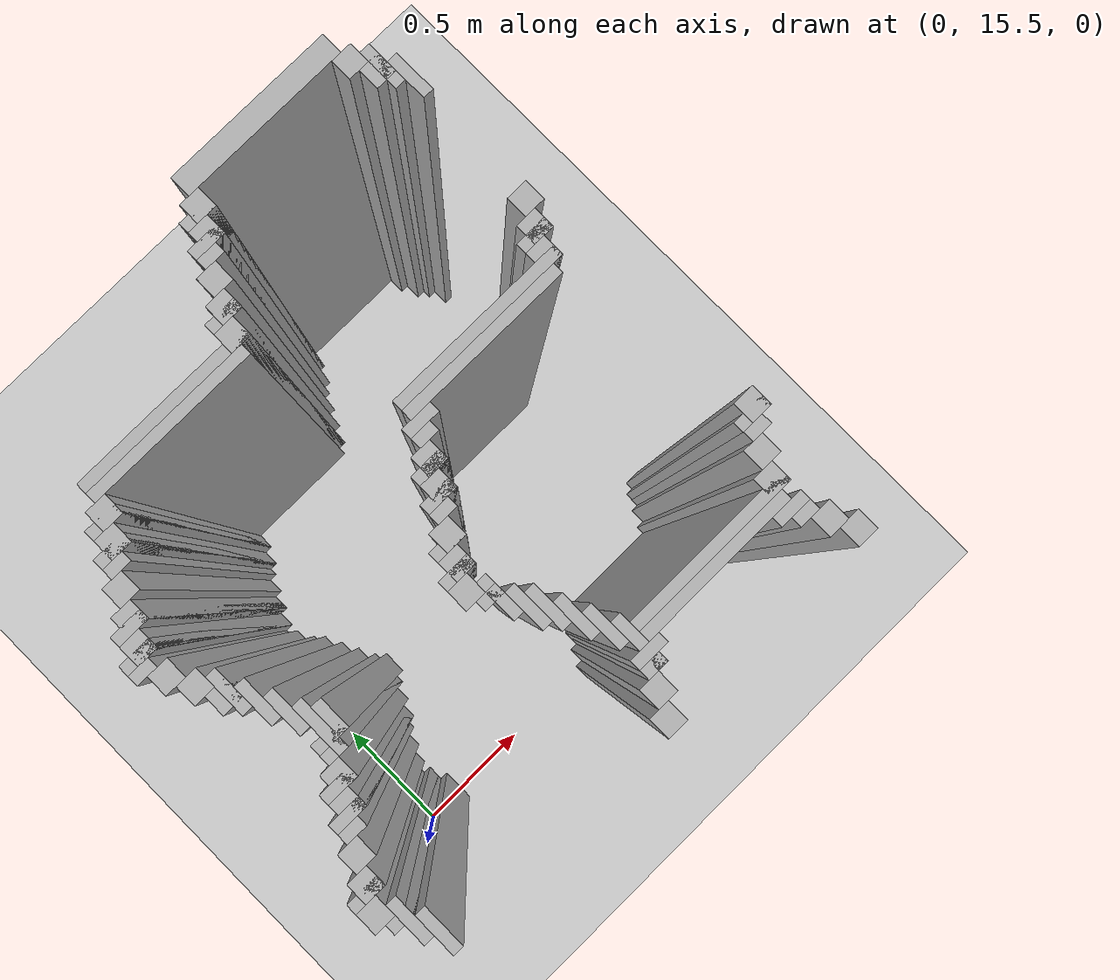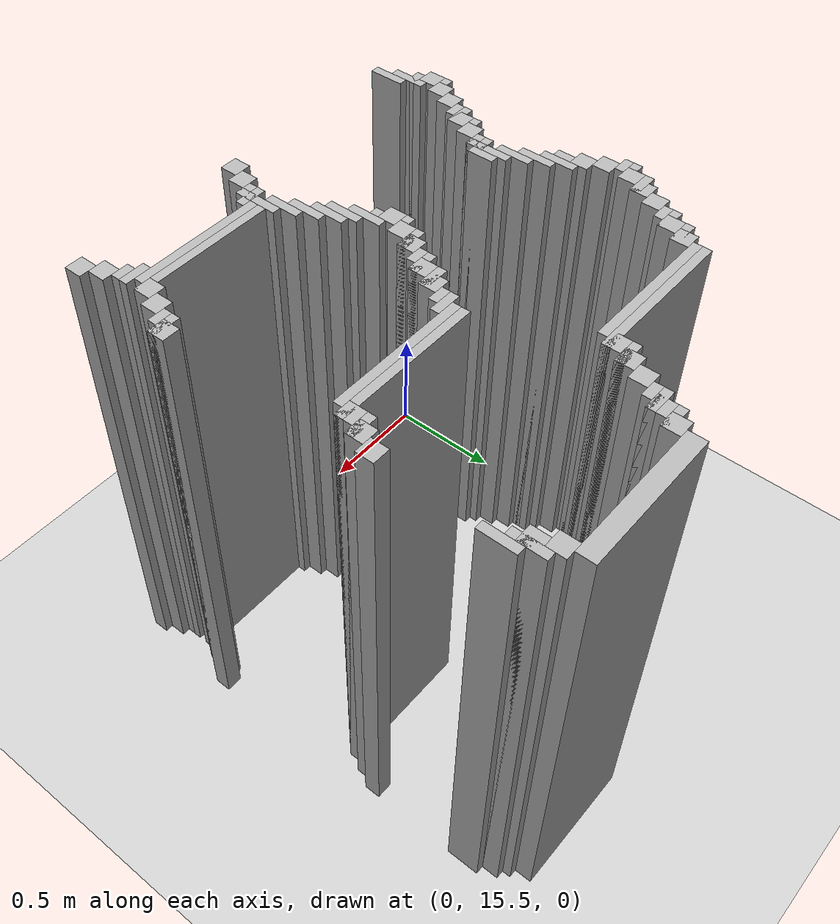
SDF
<sdf version="1.6">
 <world name="slam_world">
  <model name="ground_plane">
   <static>true</static>
   <link name="link">
    <collision name="collision">
     <geometry><plane><normal>0 0 1</normal><size>100 100</size></plane></geometry>
    </collision>
    <visual name="visual">
     <geometry><plane><normal>0 0 1</normal><size>100 100</size></plane></geometry>
     <material>
      <ambient>0.8 0.8 0.8 1</ambient>
      <diffuse>0.8 0.8 0.8 1</diffuse>
      <specular>0.8 0.8 0.8 1</specular>
     </material>
    </visual>
   </link>
  </model>
  <model name="wall_0">
   <static>true</static>
   <pose>1.2877030162412992 17.366589327146173 1.0 0 0 0</pose>
   <link name="link">
    <collision name="collision">
     <geometry><box><size>0.5568445475638051 0.06960556844547564 2.0</size></box></geometry>
    </collision>
    <visual name="visual">
     <geometry><box><size>0.5568445475638051 0.06960556844547564 2.0</size></box></geometry>
     <material><ambient>0.5 0.5 0.5 1</ambient><diffuse>0.7 0.7 0.7 1</diffuse></material>
    </visual>
   </link>
  </model>
  <model name="wall_11">
   <static>true</static>
   <pose>1.0092807424593968 17.296983758700694 1.0 0 0 0</pose>
   <link name="link">
    <collision name="collision">
     <geometry><box><size>0.06960556844547564 0.06960556844547564 2.0</size></box></geometry>
    </collision>
    <visual name="visual">
     <geometry><box><size>0.06960556844547564 0.06960556844547564 2.0</size></box></geometry>
     <material><ambient>0.5 0.5 0.5 1</ambient><diffuse>0.7 0.7 0.7 1</diffuse></material>
    </visual>
   </link>
  </model>
  <model name="wall_12">
   <static>true</static>
   <pose>1.5661252900232019 17.296983758700694 1.0 0 0 0</pose>
   <link name="link">
    <collision name="collision">
     <geometry><box><size>0.06960556844547564 0.06960556844547564 2.0</size></box></geometry>
    </collision>
    <visual name="visual">
     <geometry><box><size>0.06960556844547564 0.06960556844547564 2.0</size></box></geometry>
     <material><ambient>0.5 0.5 0.5 1</ambient><diffuse>0.7 0.7 0.7 1</diffuse></material>
    </visual>
   </link>
  </model>
  <model name="wall_31">
   <static>true</static>
   <pose>0.9918793503480278 17.279582366589327 1.0 0 0 0</pose>
   <link name="link">
    <collision name="collision">
     <geometry><box><size>0.10440835266821345 0.03480278422273782 2.0</size></box></geometry>
    </collision>
    <visual name="visual">
     <geometry><box><size>0.10440835266821345 0.03480278422273782 2.0</size></box></geometry>
     <material><ambient>0.5 0.5 0.5 1</ambient><diffuse>0.7 0.7 0.7 1</diffuse></material>
    </visual>
   </link>
  </model>
  <model name="wall_32">
   <static>true</static>
   <pose>1.6183294663573085 17.22737819025522 1.0 0 0 0</pose>
   <link name="link">
    <collision name="collision">
     <geometry><box><size>0.03480278422273782 0.13921113689095127 2.0</size></box></geometry>
    </collision>
    <visual name="visual">
     <geometry><box><size>0.03480278422273782 0.13921113689095127 2.0</size></box></geometry>
     <material><ambient>0.5 0.5 0.5 1</ambient><diffuse>0.7 0.7 0.7 1</diffuse></material>
    </visual>
   </link>
  </model>
  <model name="wall_51">
   <static>true</static>
   <pose>0.974477958236659 17.22737819025522 1.0 0 0 0</pose>
   <link name="link">
    <collision name="collision">
     <geometry><box><size>0.06960556844547564 0.06960556844547564 2.0</size></box></geometry>
    </collision>
    <visual name="visual">
     <geometry><box><size>0.06960556844547564 0.06960556844547564 2.0</size></box></geometry>
     <material><ambient>0.5 0.5 0.5 1</ambient><diffuse>0.7 0.7 0.7 1</diffuse></material>
    </visual>
   </link>
  </model>
  <model name="wall_52">
   <static>true</static>
   <pose>1.6009280742459395 17.22737819025522 1.0 0 0 0</pose>
   <link name="link">
    <collision name="collision">
     <geometry><box><size>0.06960556844547564 0.06960556844547564 2.0</size></box></geometry>
    </collision>
    <visual name="visual">
     <geometry><box><size>0.06960556844547564 0.06960556844547564 2.0</size></box></geometry>
     <material><ambient>0.5 0.5 0.5 1</ambient><diffuse>0.7 0.7 0.7 1</diffuse></material>
    </visual>
   </link>
  </model>
  <model name="wall_71">
   <static>true</static>
   <pose>0.95707656612529 17.209976798143853 1.0 0 0 0</pose>
   <link name="link">
    <collision name="collision">
     <geometry><box><size>0.10440835266821345 0.03480278422273782 2.0</size></box></geometry>
    </collision>
    <visual name="visual">
     <geometry><box><size>0.10440835266821345 0.03480278422273782 2.0</size></box></geometry>
     <material><ambient>0.5 0.5 0.5 1</ambient><diffuse>0.7 0.7 0.7 1</diffuse></material>
    </visual>
   </link>
  </model>
  <model name="wall_72">
   <static>true</static>
   <pose>1.6531322505800463 17.157772621809745 1.0 0 0 0</pose>
   <link name="link">
    <collision name="collision">
     <geometry><box><size>0.03480278422273782 0.13921113689095127 2.0</size></box></geometry>
    </collision>
    <visual name="visual">
     <geometry><box><size>0.03480278422273782 0.13921113689095127 2.0</size></box></geometry>
     <material><ambient>0.5 0.5 0.5 1</ambient><diffuse>0.7 0.7 0.7 1</diffuse></material>
    </visual>
   </link>
  </model>
  <model name="wall_91">
   <static>true</static>
   <pose>0.9396751740139211 17.17517401392111 1.0 0 0 0</pose>
   <link name="link">
    <collision name="collision">
     <geometry><box><size>0.06960556844547564 0.03480278422273782 2.0</size></box></geometry>
    </collision>
    <visual name="visual">
     <geometry><box><size>0.06960556844547564 0.03480278422273782 2.0</size></box></geometry>
     <material><ambient>0.5 0.5 0.5 1</ambient><diffuse>0.7 0.7 0.7 1</diffuse></material>
    </visual>
   </link>
  </model>
  <model name="wall_101">
   <static>true</static>
   <pose>0.9048723897911832 17.122969837587007 1.0 0 0 0</pose>
   <link name="link">
    <collision name="collision">
     <geometry><box><size>0.06960556844547564 0.06960556844547564 2.0</size></box></geometry>
    </collision>
    <visual name="visual">
     <geometry><box><size>0.06960556844547564 0.06960556844547564 2.0</size></box></geometry>
     <material><ambient>0.5 0.5 0.5 1</ambient><diffuse>0.7 0.7 0.7 1</diffuse></material>
    </visual>
   </link>
  </model>
  <model name="wall_121">
   <static>true</static>
   <pose>0.8700696055684455 17.053364269141532 1.0 0 0 0</pose>
   <link name="link">
    <collision name="collision">
     <geometry><box><size>0.06960556844547564 0.06960556844547564 2.0</size></box></geometry>
    </collision>
    <visual name="visual">
     <geometry><box><size>0.06960556844547564 0.06960556844547564 2.0</size></box></geometry>
     <material><ambient>0.5 0.5 0.5 1</ambient><diffuse>0.7 0.7 0.7 1</diffuse></material>
    </visual>
   </link>
  </model>
  <model name="wall_141">
   <static>true</static>
   <pose>0.8526682134570766 17.035962877030162 1.0 0 0 0</pose>
   <link name="link">
    <collision name="collision">
     <geometry><box><size>0.10440835266821345 0.03480278422273782 2.0</size></box></geometry>
    </collision>
    <visual name="visual">
     <geometry><box><size>0.10440835266821345 0.03480278422273782 2.0</size></box></geometry>
     <material><ambient>0.5 0.5 0.5 1</ambient><diffuse>0.7 0.7 0.7 1</diffuse></material>
    </visual>
   </link>
  </model>
  <model name="wall_161">
   <static>true</static>
   <pose>0.8352668213457076 16.983758700696054 1.0 0 0 0</pose>
   <link name="link">
    <collision name="collision">
     <geometry><box><size>0.06960556844547564 0.06960556844547564 2.0</size></box></geometry>
    </collision>
    <visual name="visual">
     <geometry><box><size>0.06960556844547564 0.06960556844547564 2.0</size></box></geometry>
     <material><ambient>0.5 0.5 0.5 1</ambient><diffuse>0.7 0.7 0.7 1</diffuse></material>
    </visual>
   </link>
  </model>
  <model name="wall_171">
   <static>true</static>
   <pose>0.574245939675174 16.966357308584687 1.0 0 0 0</pose>
   <link name="link">
    <collision name="collision">
     <geometry><box><size>0.5916473317865429 0.03480278422273782 2.0</size></box></geometry>
    </collision>
    <visual name="visual">
     <geometry><box><size>0.5916473317865429 0.03480278422273782 2.0</size></box></geometry>
     <material><ambient>0.5 0.5 0.5 1</ambient><diffuse>0.7 0.7 0.7 1</diffuse></material>
    </visual>
   </link>
  </model>
  <model name="wall_182">
   <static>true</static>
   <pose>0.5568445475638051 16.93155452436195 1.0 0 0 0</pose>
   <link name="link">
    <collision name="collision">
     <geometry><box><size>0.5568445475638051 0.03480278422273782 2.0</size></box></geometry>
    </collision>
    <visual name="visual">
     <geometry><box><size>0.5568445475638051 0.03480278422273782 2.0</size></box></geometry>
     <material><ambient>0.5 0.5 0.5 1</ambient><diffuse>0.7 0.7 0.7 1</diffuse></material>
    </visual>
   </link>
  </model>
  <model name="wall_192">
   <static>true</static>
   <pose>0.27842227378190254 16.87935034802784 1.0 0 0 0</pose>
   <link name="link">
    <collision name="collision">
     <geometry><box><size>0.06960556844547564 0.06960556844547564 2.0</size></box></geometry>
    </collision>
    <visual name="visual">
     <geometry><box><size>0.06960556844547564 0.06960556844547564 2.0</size></box></geometry>
     <material><ambient>0.5 0.5 0.5 1</ambient><diffuse>0.7 0.7 0.7 1</diffuse></material>
    </visual>
   </link>
  </model>
  <model name="wall_201">
   <static>true</static>
   <pose>0.2610208816705336 16.86194895591647 1.0 0 0 0</pose>
   <link name="link">
    <collision name="collision">
     <geometry><box><size>0.10440835266821345 0.03480278422273782 2.0</size></box></geometry>
    </collision>
    <visual name="visual">
     <geometry><box><size>0.10440835266821345 0.03480278422273782 2.0</size></box></geometry>
     <material><ambient>0.5 0.5 0.5 1</ambient><diffuse>0.7 0.7 0.7 1</diffuse></material>
    </visual>
   </link>
  </model>
  <model name="wall_210">
   <static>true</static>
   <pose>0.24361948955916474 16.809744779582367 1.0 0 0 0</pose>
   <link name="link">
    <collision name="collision">
     <geometry><box><size>0.06960556844547564 0.06960556844547564 2.0</size></box></geometry>
    </collision>
    <visual name="visual">
     <geometry><box><size>0.06960556844547564 0.06960556844547564 2.0</size></box></geometry>
     <material><ambient>0.5 0.5 0.5 1</ambient><diffuse>0.7 0.7 0.7 1</diffuse></material>
    </visual>
   </link>
  </model>
  <model name="wall_219">
   <static>true</static>
   <pose>0.2262180974477958 16.792343387470996 1.0 0 0 0</pose>
   <link name="link">
    <collision name="collision">
     <geometry><box><size>0.10440835266821345 0.03480278422273782 2.0</size></box></geometry>
    </collision>
    <visual name="visual">
     <geometry><box><size>0.10440835266821345 0.03480278422273782 2.0</size></box></geometry>
     <material><ambient>0.5 0.5 0.5 1</ambient><diffuse>0.7 0.7 0.7 1</diffuse></material>
    </visual>
   </link>
  </model>
  <model name="wall_228">
   <static>true</static>
   <pose>0.2088167053364269 16.75754060324826 1.0 0 0 0</pose>
   <link name="link">
    <collision name="collision">
     <geometry><box><size>0.06960556844547564 0.03480278422273782 2.0</size></box></geometry>
    </collision>
    <visual name="visual">
     <geometry><box><size>0.06960556844547564 0.03480278422273782 2.0</size></box></geometry>
     <material><ambient>0.5 0.5 0.5 1</ambient><diffuse>0.7 0.7 0.7 1</diffuse></material>
    </visual>
   </link>
  </model>
  <model name="wall_232">
   <static>true</static>
   <pose>0.17401392111368907 16.70533642691415 1.0 0 0 0</pose>
   <link name="link">
    <collision name="collision">
     <geometry><box><size>0.06960556844547564 0.06960556844547564 2.0</size></box></geometry>
    </collision>
    <visual name="visual">
     <geometry><box><size>0.06960556844547564 0.06960556844547564 2.0</size></box></geometry>
     <material><ambient>0.5 0.5 0.5 1</ambient><diffuse>0.7 0.7 0.7 1</diffuse></material>
    </visual>
   </link>
  </model>
  <model name="wall_233">
   <static>true</static>
   <pose>1.6357308584686774 16.70533642691415 1.0 0 0 0</pose>
   <link name="link">
    <collision name="collision">
     <geometry><box><size>0.06960556844547564 0.06960556844547564 2.0</size></box></geometry>
    </collision>
    <visual name="visual">
     <geometry><box><size>0.06960556844547564 0.06960556844547564 2.0</size></box></geometry>
     <material><ambient>0.5 0.5 0.5 1</ambient><diffuse>0.7 0.7 0.7 1</diffuse></material>
    </visual>
   </link>
  </model>
  <model name="wall_241">
   <static>true</static>
   <pose>0.13921113689095127 16.635730858468676 1.0 0 0 0</pose>
   <link name="link">
    <collision name="collision">
     <geometry><box><size>0.06960556844547564 0.06960556844547564 2.0</size></box></geometry>
    </collision>
    <visual name="visual">
     <geometry><box><size>0.06960556844547564 0.06960556844547564 2.0</size></box></geometry>
     <material><ambient>0.5 0.5 0.5 1</ambient><diffuse>0.7 0.7 0.7 1</diffuse></material>
    </visual>
   </link>
  </model>
  <model name="wall_242">
   <static>true</static>
   <pose>1.6009280742459395 16.635730858468676 1.0 0 0 0</pose>
   <link name="link">
    <collision name="collision">
     <geometry><box><size>0.06960556844547564 0.06960556844547564 2.0</size></box></geometry>
    </collision>
    <visual name="visual">
     <geometry><box><size>0.06960556844547564 0.06960556844547564 2.0</size></box></geometry>
     <material><ambient>0.5 0.5 0.5 1</ambient><diffuse>0.7 0.7 0.7 1</diffuse></material>
    </visual>
   </link>
  </model>
  <model name="wall_250">
   <static>true</static>
   <pose>0.12180974477958237 16.61832946635731 1.0 0 0 0</pose>
   <link name="link">
    <collision name="collision">
     <geometry><box><size>0.10440835266821345 0.03480278422273782 2.0</size></box></geometry>
    </collision>
    <visual name="visual">
     <geometry><box><size>0.10440835266821345 0.03480278422273782 2.0</size></box></geometry>
     <material><ambient>0.5 0.5 0.5 1</ambient><diffuse>0.7 0.7 0.7 1</diffuse></material>
    </visual>
   </link>
  </model>
  <model name="wall_251">
   <static>true</static>
   <pose>1.5835266821345706 16.61832946635731 1.0 0 0 0</pose>
   <link name="link">
    <collision name="collision">
     <geometry><box><size>0.10440835266821345 0.03480278422273782 2.0</size></box></geometry>
    </collision>
    <visual name="visual">
     <geometry><box><size>0.10440835266821345 0.03480278422273782 2.0</size></box></geometry>
     <material><ambient>0.5 0.5 0.5 1</ambient><diffuse>0.7 0.7 0.7 1</diffuse></material>
    </visual>
   </link>
  </model>
  <model name="wall_259">
   <static>true</static>
   <pose>0.10440835266821345 16.5661252900232 1.0 0 0 0</pose>
   <link name="link">
    <collision name="collision">
     <geometry><box><size>0.06960556844547564 0.06960556844547564 2.0</size></box></geometry>
    </collision>
    <visual name="visual">
     <geometry><box><size>0.06960556844547564 0.06960556844547564 2.0</size></box></geometry>
     <material><ambient>0.5 0.5 0.5 1</ambient><diffuse>0.7 0.7 0.7 1</diffuse></material>
    </visual>
   </link>
  </model>
  <model name="wall_260">
   <static>true</static>
   <pose>1.5661252900232019 16.5661252900232 1.0 0 0 0</pose>
   <link name="link">
    <collision name="collision">
     <geometry><box><size>0.06960556844547564 0.06960556844547564 2.0</size></box></geometry>
    </collision>
    <visual name="visual">
     <geometry><box><size>0.06960556844547564 0.06960556844547564 2.0</size></box></geometry>
     <material><ambient>0.5 0.5 0.5 1</ambient><diffuse>0.7 0.7 0.7 1</diffuse></material>
    </visual>
   </link>
  </model>
  <model name="wall_263">
   <static>true</static>
   <pose>0.08700696055684454 16.54872389791183 1.0 0 0 0</pose>
   <link name="link">
    <collision name="collision">
     <geometry><box><size>0.10440835266821345 0.03480278422273782 2.0</size></box></geometry>
    </collision>
    <visual name="visual">
     <geometry><box><size>0.10440835266821345 0.03480278422273782 2.0</size></box></geometry>
     <material><ambient>0.5 0.5 0.5 1</ambient><diffuse>0.7 0.7 0.7 1</diffuse></material>
    </visual>
   </link>
  </model>
  <model name="wall_264">
   <static>true</static>
   <pose>1.3051044083526682 16.54872389791183 1.0 0 0 0</pose>
   <link name="link">
    <collision name="collision">
     <geometry><box><size>0.5916473317865429 0.03480278422273782 2.0</size></box></geometry>
    </collision>
    <visual name="visual">
     <geometry><box><size>0.5916473317865429 0.03480278422273782 2.0</size></box></geometry>
     <material><ambient>0.5 0.5 0.5 1</ambient><diffuse>0.7 0.7 0.7 1</diffuse></material>
    </visual>
   </link>
  </model>
  <model name="wall_276">
   <static>true</static>
   <pose>0.06960556844547564 16.513921113689094 1.0 0 0 0</pose>
   <link name="link">
    <collision name="collision">
     <geometry><box><size>0.06960556844547564 0.03480278422273782 2.0</size></box></geometry>
    </collision>
    <visual name="visual">
     <geometry><box><size>0.06960556844547564 0.03480278422273782 2.0</size></box></geometry>
     <material><ambient>0.5 0.5 0.5 1</ambient><diffuse>0.7 0.7 0.7 1</diffuse></material>
    </visual>
   </link>
  </model>
  <model name="wall_277">
   <static>true</static>
   <pose>1.2877030162412992 16.513921113689094 1.0 0 0 0</pose>
   <link name="link">
    <collision name="collision">
     <geometry><box><size>0.5568445475638051 0.03480278422273782 2.0</size></box></geometry>
    </collision>
    <visual name="visual">
     <geometry><box><size>0.5568445475638051 0.03480278422273782 2.0</size></box></geometry>
     <material><ambient>0.5 0.5 0.5 1</ambient><diffuse>0.7 0.7 0.7 1</diffuse></material>
    </visual>
   </link>
  </model>
  <model name="wall_280">
   <static>true</static>
   <pose>0.10440835266821345 16.46171693735499 1.0 0 0 0</pose>
   <link name="link">
    <collision name="collision">
     <geometry><box><size>0.06960556844547564 0.06960556844547564 2.0</size></box></geometry>
    </collision>
    <visual name="visual">
     <geometry><box><size>0.06960556844547564 0.06960556844547564 2.0</size></box></geometry>
     <material><ambient>0.5 0.5 0.5 1</ambient><diffuse>0.7 0.7 0.7 1</diffuse></material>
    </visual>
   </link>
  </model>
  <model name="wall_281">
   <static>true</static>
   <pose>1.0266821345707655 16.479118329466356 1.0 0 0 0</pose>
   <link name="link">
    <collision name="collision">
     <geometry><box><size>0.10440835266821345 0.03480278422273782 2.0</size></box></geometry>
    </collision>
    <visual name="visual">
     <geometry><box><size>0.10440835266821345 0.03480278422273782 2.0</size></box></geometry>
     <material><ambient>0.5 0.5 0.5 1</ambient><diffuse>0.7 0.7 0.7 1</diffuse></material>
    </visual>
   </link>
  </model>
  <model name="wall_294">
   <static>true</static>
   <pose>1.0092807424593968 16.44431554524362 1.0 0 0 0</pose>
   <link name="link">
    <collision name="collision">
     <geometry><box><size>0.06960556844547564 0.03480278422273782 2.0</size></box></geometry>
    </collision>
    <visual name="visual">
     <geometry><box><size>0.06960556844547564 0.03480278422273782 2.0</size></box></geometry>
     <material><ambient>0.5 0.5 0.5 1</ambient><diffuse>0.7 0.7 0.7 1</diffuse></material>
    </visual>
   </link>
  </model>
  <model name="wall_303">
   <static>true</static>
   <pose>0.13921113689095127 16.39211136890951 1.0 0 0 0</pose>
   <link name="link">
    <collision name="collision">
     <geometry><box><size>0.06960556844547564 0.06960556844547564 2.0</size></box></geometry>
    </collision>
    <visual name="visual">
     <geometry><box><size>0.06960556844547564 0.06960556844547564 2.0</size></box></geometry>
     <material><ambient>0.5 0.5 0.5 1</ambient><diffuse>0.7 0.7 0.7 1</diffuse></material>
    </visual>
   </link>
  </model>
  <model name="wall_304">
   <static>true</static>
   <pose>0.974477958236659 16.39211136890951 1.0 0 0 0</pose>
   <link name="link">
    <collision name="collision">
     <geometry><box><size>0.06960556844547564 0.06960556844547564 2.0</size></box></geometry>
    </collision>
    <visual name="visual">
     <geometry><box><size>0.06960556844547564 0.06960556844547564 2.0</size></box></geometry>
     <material><ambient>0.5 0.5 0.5 1</ambient><diffuse>0.7 0.7 0.7 1</diffuse></material>
    </visual>
   </link>
  </model>
  <model name="wall_317">
   <static>true</static>
   <pose>0.191415313225058 16.322505800464036 1.0 0 0 0</pose>
   <link name="link">
    <collision name="collision">
     <geometry><box><size>0.03480278422273782 0.13921113689095127 2.0</size></box></geometry>
    </collision>
    <visual name="visual">
     <geometry><box><size>0.03480278422273782 0.13921113689095127 2.0</size></box></geometry>
     <material><ambient>0.5 0.5 0.5 1</ambient><diffuse>0.7 0.7 0.7 1</diffuse></material>
    </visual>
   </link>
  </model>
  <model name="wall_318">
   <static>true</static>
   <pose>0.95707656612529 16.374709976798144 1.0 0 0 0</pose>
   <link name="link">
    <collision name="collision">
     <geometry><box><size>0.10440835266821345 0.03480278422273782 2.0</size></box></geometry>
    </collision>
    <visual name="visual">
     <geometry><box><size>0.10440835266821345 0.03480278422273782 2.0</size></box></geometry>
     <material><ambient>0.5 0.5 0.5 1</ambient><diffuse>0.7 0.7 0.7 1</diffuse></material>
    </visual>
   </link>
  </model>
  <model name="wall_331">
   <static>true</static>
   <pose>0.17401392111368907 16.322505800464036 1.0 0 0 0</pose>
   <link name="link">
    <collision name="collision">
     <geometry><box><size>0.06960556844547564 0.06960556844547564 2.0</size></box></geometry>
    </collision>
    <visual name="visual">
     <geometry><box><size>0.06960556844547564 0.06960556844547564 2.0</size></box></geometry>
     <material><ambient>0.5 0.5 0.5 1</ambient><diffuse>0.7 0.7 0.7 1</diffuse></material>
    </visual>
   </link>
  </model>
  <model name="wall_332">
   <static>true</static>
   <pose>0.9396751740139211 16.322505800464036 1.0 0 0 0</pose>
   <link name="link">
    <collision name="collision">
     <geometry><box><size>0.06960556844547564 0.06960556844547564 2.0</size></box></geometry>
    </collision>
    <visual name="visual">
     <geometry><box><size>0.06960556844547564 0.06960556844547564 2.0</size></box></geometry>
     <material><ambient>0.5 0.5 0.5 1</ambient><diffuse>0.7 0.7 0.7 1</diffuse></material>
    </visual>
   </link>
  </model>
  <model name="wall_345">
   <static>true</static>
   <pose>0.2262180974477958 16.25290023201856 1.0 0 0 0</pose>
   <link name="link">
    <collision name="collision">
     <geometry><box><size>0.03480278422273782 0.13921113689095127 2.0</size></box></geometry>
    </collision>
    <visual name="visual">
     <geometry><box><size>0.03480278422273782 0.13921113689095127 2.0</size></box></geometry>
     <material><ambient>0.5 0.5 0.5 1</ambient><diffuse>0.7 0.7 0.7 1</diffuse></material>
    </visual>
   </link>
  </model>
  <model name="wall_346">
   <static>true</static>
   <pose>0.9222737819025522 16.30510440835267 1.0 0 0 0</pose>
   <link name="link">
    <collision name="collision">
     <geometry><box><size>0.10440835266821345 0.03480278422273782 2.0</size></box></geometry>
    </collision>
    <visual name="visual">
     <geometry><box><size>0.10440835266821345 0.03480278422273782 2.0</size></box></geometry>
     <material><ambient>0.5 0.5 0.5 1</ambient><diffuse>0.7 0.7 0.7 1</diffuse></material>
    </visual>
   </link>
  </model>
  <model name="wall_359">
   <static>true</static>
   <pose>0.9048723897911832 16.270301624129928 1.0 0 0 0</pose>
   <link name="link">
    <collision name="collision">
     <geometry><box><size>0.06960556844547564 0.03480278422273782 2.0</size></box></geometry>
    </collision>
    <visual name="visual">
     <geometry><box><size>0.06960556844547564 0.03480278422273782 2.0</size></box></geometry>
     <material><ambient>0.5 0.5 0.5 1</ambient><diffuse>0.7 0.7 0.7 1</diffuse></material>
    </visual>
   </link>
  </model>
  <model name="wall_367">
   <static>true</static>
   <pose>0.2610208816705336 16.183294663573086 1.0 0 0 0</pose>
   <link name="link">
    <collision name="collision">
     <geometry><box><size>0.03480278422273782 0.13921113689095127 2.0</size></box></geometry>
    </collision>
    <visual name="visual">
     <geometry><box><size>0.03480278422273782 0.13921113689095127 2.0</size></box></geometry>
     <material><ambient>0.5 0.5 0.5 1</ambient><diffuse>0.7 0.7 0.7 1</diffuse></material>
    </visual>
   </link>
  </model>
  <model name="wall_368">
   <static>true</static>
   <pose>0.8700696055684455 16.218097447795824 1.0 0 0 0</pose>
   <link name="link">
    <collision name="collision">
     <geometry><box><size>0.06960556844547564 0.06960556844547564 2.0</size></box></geometry>
    </collision>
    <visual name="visual">
     <geometry><box><size>0.06960556844547564 0.06960556844547564 2.0</size></box></geometry>
     <material><ambient>0.5 0.5 0.5 1</ambient><diffuse>0.7 0.7 0.7 1</diffuse></material>
    </visual>
   </link>
  </model>
  <model name="wall_381">
   <static>true</static>
   <pose>0.8526682134570766 16.200696055684453 1.0 0 0 0</pose>
   <link name="link">
    <collision name="collision">
     <geometry><box><size>0.10440835266821345 0.03480278422273782 2.0</size></box></geometry>
    </collision>
    <visual name="visual">
     <geometry><box><size>0.10440835266821345 0.03480278422273782 2.0</size></box></geometry>
     <material><ambient>0.5 0.5 0.5 1</ambient><diffuse>0.7 0.7 0.7 1</diffuse></material>
    </visual>
   </link>
  </model>
  <model name="wall_389">
   <static>true</static>
   <pose>0.29582366589327147 16.09628770301624 1.0 0 0 0</pose>
   <link name="link">
    <collision name="collision">
     <geometry><box><size>0.03480278422273782 0.17401392111368907 2.0</size></box></geometry>
    </collision>
    <visual name="visual">
     <geometry><box><size>0.03480278422273782 0.17401392111368907 2.0</size></box></geometry>
     <material><ambient>0.5 0.5 0.5 1</ambient><diffuse>0.7 0.7 0.7 1</diffuse></material>
    </visual>
   </link>
  </model>
  <model name="wall_390">
   <static>true</static>
   <pose>0.8352668213457076 16.14849187935035 1.0 0 0 0</pose>
   <link name="link">
    <collision name="collision">
     <geometry><box><size>0.06960556844547564 0.06960556844547564 2.0</size></box></geometry>
    </collision>
    <visual name="visual">
     <geometry><box><size>0.06960556844547564 0.06960556844547564 2.0</size></box></geometry>
     <material><ambient>0.5 0.5 0.5 1</ambient><diffuse>0.7 0.7 0.7 1</diffuse></material>
    </visual>
   </link>
  </model>
  <model name="wall_403">
   <static>true</static>
   <pose>0.3306264501160093 16.09628770301624 1.0 0 0 0</pose>
   <link name="link">
    <collision name="collision">
     <geometry><box><size>0.03480278422273782 0.10440835266821345 2.0</size></box></geometry>
    </collision>
    <visual name="visual">
     <geometry><box><size>0.03480278422273782 0.10440835266821345 2.0</size></box></geometry>
     <material><ambient>0.5 0.5 0.5 1</ambient><diffuse>0.7 0.7 0.7 1</diffuse></material>
    </visual>
   </link>
  </model>
  <model name="wall_404">
   <static>true</static>
   <pose>0.8178654292343387 16.13109048723898 1.0 0 0 0</pose>
   <link name="link">
    <collision name="collision">
     <geometry><box><size>0.10440835266821345 0.03480278422273782 2.0</size></box></geometry>
    </collision>
    <visual name="visual">
     <geometry><box><size>0.10440835266821345 0.03480278422273782 2.0</size></box></geometry>
     <material><ambient>0.5 0.5 0.5 1</ambient><diffuse>0.7 0.7 0.7 1</diffuse></material>
    </visual>
   </link>
  </model>
  <model name="wall_416">
   <static>true</static>
   <pose>0.8004640371229698 16.07888631090487 1.0 0 0 0</pose>
   <link name="link">
    <collision name="collision">
     <geometry><box><size>0.06960556844547564 0.06960556844547564 2.0</size></box></geometry>
    </collision>
    <visual name="visual">
     <geometry><box><size>0.06960556844547564 0.06960556844547564 2.0</size></box></geometry>
     <material><ambient>0.5 0.5 0.5 1</ambient><diffuse>0.7 0.7 0.7 1</diffuse></material>
    </visual>
   </link>
  </model>
  <model name="wall_428">
   <static>true</static>
   <pose>0.29582366589327147 16.061484918793504 1.0 0 0 0</pose>
   <link name="link">
    <collision name="collision">
     <geometry><box><size>0.10440835266821345 0.03480278422273782 2.0</size></box></geometry>
    </collision>
    <visual name="visual">
     <geometry><box><size>0.10440835266821345 0.03480278422273782 2.0</size></box></geometry>
     <material><ambient>0.5 0.5 0.5 1</ambient><diffuse>0.7 0.7 0.7 1</diffuse></material>
    </visual>
   </link>
  </model>
  <model name="wall_429">
   <static>true</static>
   <pose>0.8526682134570766 16.009280742459396 1.0 0 0 0</pose>
   <link name="link">
    <collision name="collision">
     <geometry><box><size>0.03480278422273782 0.13921113689095127 2.0</size></box></geometry>
    </collision>
    <visual name="visual">
     <geometry><box><size>0.03480278422273782 0.13921113689095127 2.0</size></box></geometry>
     <material><ambient>0.5 0.5 0.5 1</ambient><diffuse>0.7 0.7 0.7 1</diffuse></material>
    </visual>
   </link>
  </model>
  <model name="wall_442">
   <static>true</static>
   <pose>0.27842227378190254 16.026682134570766 1.0 0 0 0</pose>
   <link name="link">
    <collision name="collision">
     <geometry><box><size>0.06960556844547564 0.03480278422273782 2.0</size></box></geometry>
    </collision>
    <visual name="visual">
     <geometry><box><size>0.06960556844547564 0.03480278422273782 2.0</size></box></geometry>
     <material><ambient>0.5 0.5 0.5 1</ambient><diffuse>0.7 0.7 0.7 1</diffuse></material>
    </visual>
   </link>
  </model>
  <model name="wall_443">
   <static>true</static>
   <pose>0.8352668213457076 16.026682134570766 1.0 0 0 0</pose>
   <link name="link">
    <collision name="collision">
     <geometry><box><size>0.06960556844547564 0.03480278422273782 2.0</size></box></geometry>
    </collision>
    <visual name="visual">
     <geometry><box><size>0.06960556844547564 0.03480278422273782 2.0</size></box></geometry>
     <material><ambient>0.5 0.5 0.5 1</ambient><diffuse>0.7 0.7 0.7 1</diffuse></material>
    </visual>
   </link>
  </model>
  <model name="wall_456">
   <static>true</static>
   <pose>0.24361948955916474 15.974477958236658 1.0 0 0 0</pose>
   <link name="link">
    <collision name="collision">
     <geometry><box><size>0.06960556844547564 0.06960556844547564 2.0</size></box></geometry>
    </collision>
    <visual name="visual">
     <geometry><box><size>0.06960556844547564 0.06960556844547564 2.0</size></box></geometry>
     <material><ambient>0.5 0.5 0.5 1</ambient><diffuse>0.7 0.7 0.7 1</diffuse></material>
    </visual>
   </link>
  </model>
  <model name="wall_457">
   <static>true</static>
   <pose>0.8874709976798143 15.93967517401392 1.0 0 0 0</pose>
   <link name="link">
    <collision name="collision">
     <geometry><box><size>0.03480278422273782 0.13921113689095127 2.0</size></box></geometry>
    </collision>
    <visual name="visual">
     <geometry><box><size>0.03480278422273782 0.13921113689095127 2.0</size></box></geometry>
     <material><ambient>0.5 0.5 0.5 1</ambient><diffuse>0.7 0.7 0.7 1</diffuse></material>
    </visual>
   </link>
  </model>
  <model name="wall_470">
   <static>true</static>
   <pose>0.2262180974477958 15.95707656612529 1.0 0 0 0</pose>
   <link name="link">
    <collision name="collision">
     <geometry><box><size>0.10440835266821345 0.03480278422273782 2.0</size></box></geometry>
    </collision>
    <visual name="visual">
     <geometry><box><size>0.10440835266821345 0.03480278422273782 2.0</size></box></geometry>
     <material><ambient>0.5 0.5 0.5 1</ambient><diffuse>0.7 0.7 0.7 1</diffuse></material>
    </visual>
   </link>
  </model>
  <model name="wall_471">
   <static>true</static>
   <pose>0.9222737819025522 15.904872389791183 1.0 0 0 0</pose>
   <link name="link">
    <collision name="collision">
     <geometry><box><size>0.03480278422273782 0.13921113689095127 2.0</size></box></geometry>
    </collision>
    <visual name="visual">
     <geometry><box><size>0.03480278422273782 0.13921113689095127 2.0</size></box></geometry>
     <material><ambient>0.5 0.5 0.5 1</ambient><diffuse>0.7 0.7 0.7 1</diffuse></material>
    </visual>
   </link>
  </model>
  <model name="wall_484">
   <static>true</static>
   <pose>0.2088167053364269 15.904872389791183 1.0 0 0 0</pose>
   <link name="link">
    <collision name="collision">
     <geometry><box><size>0.06960556844547564 0.06960556844547564 2.0</size></box></geometry>
    </collision>
    <visual name="visual">
     <geometry><box><size>0.06960556844547564 0.06960556844547564 2.0</size></box></geometry>
     <material><ambient>0.5 0.5 0.5 1</ambient><diffuse>0.7 0.7 0.7 1</diffuse></material>
    </visual>
   </link>
  </model>
  <model name="wall_485">
   <static>true</static>
   <pose>1.6705336426914152 15.904872389791183 1.0 0 0 0</pose>
   <link name="link">
    <collision name="collision">
     <geometry><box><size>0.06960556844547564 0.06960556844547564 2.0</size></box></geometry>
    </collision>
    <visual name="visual">
     <geometry><box><size>0.06960556844547564 0.06960556844547564 2.0</size></box></geometry>
     <material><ambient>0.5 0.5 0.5 1</ambient><diffuse>0.7 0.7 0.7 1</diffuse></material>
    </visual>
   </link>
  </model>
  <model name="wall_494">
   <static>true</static>
   <pose>0.191415313225058 15.887470997679813 1.0 0 0 0</pose>
   <link name="link">
    <collision name="collision">
     <geometry><box><size>0.10440835266821345 0.03480278422273782 2.0</size></box></geometry>
    </collision>
    <visual name="visual">
     <geometry><box><size>0.10440835266821345 0.03480278422273782 2.0</size></box></geometry>
     <material><ambient>0.5 0.5 0.5 1</ambient><diffuse>0.7 0.7 0.7 1</diffuse></material>
    </visual>
   </link>
  </model>
  <model name="wall_495">
   <static>true</static>
   <pose>0.95707656612529 15.835266821345707 1.0 0 0 0</pose>
   <link name="link">
    <collision name="collision">
     <geometry><box><size>0.03480278422273782 0.13921113689095127 2.0</size></box></geometry>
    </collision>
    <visual name="visual">
     <geometry><box><size>0.03480278422273782 0.13921113689095127 2.0</size></box></geometry>
     <material><ambient>0.5 0.5 0.5 1</ambient><diffuse>0.7 0.7 0.7 1</diffuse></material>
    </visual>
   </link>
  </model>
  <model name="wall_496">
   <static>true</static>
   <pose>1.6531322505800463 15.887470997679813 1.0 0 0 0</pose>
   <link name="link">
    <collision name="collision">
     <geometry><box><size>0.10440835266821345 0.03480278422273782 2.0</size></box></geometry>
    </collision>
    <visual name="visual">
     <geometry><box><size>0.10440835266821345 0.03480278422273782 2.0</size></box></geometry>
     <material><ambient>0.5 0.5 0.5 1</ambient><diffuse>0.7 0.7 0.7 1</diffuse></material>
    </visual>
   </link>
  </model>
  <model name="wall_508">
   <static>true</static>
   <pose>0.17401392111368907 15.852668213457076 1.0 0 0 0</pose>
   <link name="link">
    <collision name="collision">
     <geometry><box><size>0.06960556844547564 0.03480278422273782 2.0</size></box></geometry>
    </collision>
    <visual name="visual">
     <geometry><box><size>0.06960556844547564 0.03480278422273782 2.0</size></box></geometry>
     <material><ambient>0.5 0.5 0.5 1</ambient><diffuse>0.7 0.7 0.7 1</diffuse></material>
    </visual>
   </link>
  </model>
  <model name="wall_509">
   <static>true</static>
   <pose>1.6357308584686774 15.852668213457076 1.0 0 0 0</pose>
   <link name="link">
    <collision name="collision">
     <geometry><box><size>0.06960556844547564 0.03480278422273782 2.0</size></box></geometry>
    </collision>
    <visual name="visual">
     <geometry><box><size>0.06960556844547564 0.03480278422273782 2.0</size></box></geometry>
     <material><ambient>0.5 0.5 0.5 1</ambient><diffuse>0.7 0.7 0.7 1</diffuse></material>
    </visual>
   </link>
  </model>
  <model name="wall_516">
   <static>true</static>
   <pose>0.13921113689095127 15.80046403712297 1.0 0 0 0</pose>
   <link name="link">
    <collision name="collision">
     <geometry><box><size>0.06960556844547564 0.06960556844547564 2.0</size></box></geometry>
    </collision>
    <visual name="visual">
     <geometry><box><size>0.06960556844547564 0.06960556844547564 2.0</size></box></geometry>
     <material><ambient>0.5 0.5 0.5 1</ambient><diffuse>0.7 0.7 0.7 1</diffuse></material>
    </visual>
   </link>
  </model>
  <model name="wall_517">
   <static>true</static>
   <pose>0.9918793503480278 15.765661252900232 1.0 0 0 0</pose>
   <link name="link">
    <collision name="collision">
     <geometry><box><size>0.03480278422273782 0.13921113689095127 2.0</size></box></geometry>
    </collision>
    <visual name="visual">
     <geometry><box><size>0.03480278422273782 0.13921113689095127 2.0</size></box></geometry>
     <material><ambient>0.5 0.5 0.5 1</ambient><diffuse>0.7 0.7 0.7 1</diffuse></material>
    </visual>
   </link>
  </model>
  <model name="wall_518">
   <static>true</static>
   <pose>1.6009280742459395 15.80046403712297 1.0 0 0 0</pose>
   <link name="link">
    <collision name="collision">
     <geometry><box><size>0.06960556844547564 0.06960556844547564 2.0</size></box></geometry>
    </collision>
    <visual name="visual">
     <geometry><box><size>0.06960556844547564 0.06960556844547564 2.0</size></box></geometry>
     <material><ambient>0.5 0.5 0.5 1</ambient><diffuse>0.7 0.7 0.7 1</diffuse></material>
    </visual>
   </link>
  </model>
  <model name="wall_530">
   <static>true</static>
   <pose>0.10440835266821345 15.730858468677493 1.0 0 0 0</pose>
   <link name="link">
    <collision name="collision">
     <geometry><box><size>0.06960556844547564 0.06960556844547564 2.0</size></box></geometry>
    </collision>
    <visual name="visual">
     <geometry><box><size>0.06960556844547564 0.06960556844547564 2.0</size></box></geometry>
     <material><ambient>0.5 0.5 0.5 1</ambient><diffuse>0.7 0.7 0.7 1</diffuse></material>
    </visual>
   </link>
  </model>
  <model name="wall_531">
   <static>true</static>
   <pose>1.0266821345707655 15.678654292343387 1.0 0 0 0</pose>
   <link name="link">
    <collision name="collision">
     <geometry><box><size>0.03480278422273782 0.17401392111368907 2.0</size></box></geometry>
    </collision>
    <visual name="visual">
     <geometry><box><size>0.03480278422273782 0.17401392111368907 2.0</size></box></geometry>
     <material><ambient>0.5 0.5 0.5 1</ambient><diffuse>0.7 0.7 0.7 1</diffuse></material>
    </visual>
   </link>
  </model>
  <model name="wall_532">
   <static>true</static>
   <pose>1.5661252900232019 15.730858468677493 1.0 0 0 0</pose>
   <link name="link">
    <collision name="collision">
     <geometry><box><size>0.06960556844547564 0.06960556844547564 2.0</size></box></geometry>
    </collision>
    <visual name="visual">
     <geometry><box><size>0.06960556844547564 0.06960556844547564 2.0</size></box></geometry>
     <material><ambient>0.5 0.5 0.5 1</ambient><diffuse>0.7 0.7 0.7 1</diffuse></material>
    </visual>
   </link>
  </model>
  <model name="wall_544">
   <static>true</static>
   <pose>0.08700696055684454 15.713457076566124 1.0 0 0 0</pose>
   <link name="link">
    <collision name="collision">
     <geometry><box><size>0.10440835266821345 0.03480278422273782 2.0</size></box></geometry>
    </collision>
    <visual name="visual">
     <geometry><box><size>0.10440835266821345 0.03480278422273782 2.0</size></box></geometry>
     <material><ambient>0.5 0.5 0.5 1</ambient><diffuse>0.7 0.7 0.7 1</diffuse></material>
    </visual>
   </link>
  </model>
  <model name="wall_545">
   <static>true</static>
   <pose>1.322505800464037 15.713457076566124 1.0 0 0 0</pose>
   <link name="link">
    <collision name="collision">
     <geometry><box><size>0.5568445475638051 0.03480278422273782 2.0</size></box></geometry>
    </collision>
    <visual name="visual">
     <geometry><box><size>0.5568445475638051 0.03480278422273782 2.0</size></box></geometry>
     <material><ambient>0.5 0.5 0.5 1</ambient><diffuse>0.7 0.7 0.7 1</diffuse></material>
    </visual>
   </link>
  </model>
  <model name="wall_556">
   <static>true</static>
   <pose>0.06960556844547564 15.661252900232018 1.0 0 0 0</pose>
   <link name="link">
    <collision name="collision">
     <geometry><box><size>0.06960556844547564 0.06960556844547564 2.0</size></box></geometry>
    </collision>
    <visual name="visual">
     <geometry><box><size>0.06960556844547564 0.06960556844547564 2.0</size></box></geometry>
     <material><ambient>0.5 0.5 0.5 1</ambient><diffuse>0.7 0.7 0.7 1</diffuse></material>
    </visual>
   </link>
  </model>
  <model name="wall_557">
   <static>true</static>
   <pose>1.3051044083526682 15.678654292343387 1.0 0 0 0</pose>
   <link name="link">
    <collision name="collision">
     <geometry><box><size>0.5220417633410672 0.03480278422273782 2.0</size></box></geometry>
    </collision>
    <visual name="visual">
     <geometry><box><size>0.5220417633410672 0.03480278422273782 2.0</size></box></geometry>
     <material><ambient>0.5 0.5 0.5 1</ambient><diffuse>0.7 0.7 0.7 1</diffuse></material>
    </visual>
   </link>
  </model>
  <model name="wall_569">
   <static>true</static>
   <pose>0.12180974477958237 15.591647331786543 1.0 0 0 0</pose>
   <link name="link">
    <collision name="collision">
     <geometry><box><size>0.03480278422273782 0.13921113689095127 2.0</size></box></geometry>
    </collision>
    <visual name="visual">
     <geometry><box><size>0.03480278422273782 0.13921113689095127 2.0</size></box></geometry>
     <material><ambient>0.5 0.5 0.5 1</ambient><diffuse>0.7 0.7 0.7 1</diffuse></material>
    </visual>
   </link>
  </model>
  <model name="wall_570">
   <static>true</static>
   <pose>1.0266821345707655 15.64385150812065 1.0 0 0 0</pose>
   <link name="link">
    <collision name="collision">
     <geometry><box><size>0.10440835266821345 0.03480278422273782 2.0</size></box></geometry>
    </collision>
    <visual name="visual">
     <geometry><box><size>0.10440835266821345 0.03480278422273782 2.0</size></box></geometry>
     <material><ambient>0.5 0.5 0.5 1</ambient><diffuse>0.7 0.7 0.7 1</diffuse></material>
    </visual>
   </link>
  </model>
  <model name="wall_571">
   <static>true</static>
   <pose>1.548723897911833 15.64385150812065 1.0 0 0 0</pose>
   <link name="link">
    <collision name="collision">
     <geometry><box><size>0.10440835266821345 0.03480278422273782 2.0</size></box></geometry>
    </collision>
    <visual name="visual">
     <geometry><box><size>0.10440835266821345 0.03480278422273782 2.0</size></box></geometry>
     <material><ambient>0.5 0.5 0.5 1</ambient><diffuse>0.7 0.7 0.7 1</diffuse></material>
    </visual>
   </link>
  </model>
  <model name="wall_589">
   <static>true</static>
   <pose>0.10440835266821345 15.609048723897912 1.0 0 0 0</pose>
   <link name="link">
    <collision name="collision">
     <geometry><box><size>0.06960556844547564 0.03480278422273782 2.0</size></box></geometry>
    </collision>
    <visual name="visual">
     <geometry><box><size>0.06960556844547564 0.03480278422273782 2.0</size></box></geometry>
     <material><ambient>0.5 0.5 0.5 1</ambient><diffuse>0.7 0.7 0.7 1</diffuse></material>
    </visual>
   </link>
  </model>
  <model name="wall_590">
   <static>true</static>
   <pose>1.0092807424593968 15.609048723897912 1.0 0 0 0</pose>
   <link name="link">
    <collision name="collision">
     <geometry><box><size>0.06960556844547564 0.03480278422273782 2.0</size></box></geometry>
    </collision>
    <visual name="visual">
     <geometry><box><size>0.06960556844547564 0.03480278422273782 2.0</size></box></geometry>
     <material><ambient>0.5 0.5 0.5 1</ambient><diffuse>0.7 0.7 0.7 1</diffuse></material>
    </visual>
   </link>
  </model>
  <model name="wall_591">
   <static>true</static>
   <pose>1.5661252900232019 15.609048723897912 1.0 0 0 0</pose>
   <link name="link">
    <collision name="collision">
     <geometry><box><size>0.06960556844547564 0.03480278422273782 2.0</size></box></geometry>
    </collision>
    <visual name="visual">
     <geometry><box><size>0.06960556844547564 0.03480278422273782 2.0</size></box></geometry>
     <material><ambient>0.5 0.5 0.5 1</ambient><diffuse>0.7 0.7 0.7 1</diffuse></material>
    </visual>
   </link>
  </model>
  <model name="wall_606">
   <static>true</static>
   <pose>0.15661252900232017 15.522041763341067 1.0 0 0 0</pose>
   <link name="link">
    <collision name="collision">
     <geometry><box><size>0.03480278422273782 0.13921113689095127 2.0</size></box></geometry>
    </collision>
    <visual name="visual">
     <geometry><box><size>0.03480278422273782 0.13921113689095127 2.0</size></box></geometry>
     <material><ambient>0.5 0.5 0.5 1</ambient><diffuse>0.7 0.7 0.7 1</diffuse></material>
    </visual>
   </link>
  </model>
  <model name="wall_607">
   <static>true</static>
   <pose>0.974477958236659 15.556844547563804 1.0 0 0 0</pose>
   <link name="link">
    <collision name="collision">
     <geometry><box><size>0.06960556844547564 0.06960556844547564 2.0</size></box></geometry>
    </collision>
    <visual name="visual">
     <geometry><box><size>0.06960556844547564 0.06960556844547564 2.0</size></box></geometry>
     <material><ambient>0.5 0.5 0.5 1</ambient><diffuse>0.7 0.7 0.7 1</diffuse></material>
    </visual>
   </link>
  </model>
  <model name="wall_608">
   <static>true</static>
   <pose>1.6009280742459395 15.556844547563804 1.0 0 0 0</pose>
   <link name="link">
    <collision name="collision">
     <geometry><box><size>0.06960556844547564 0.06960556844547564 2.0</size></box></geometry>
    </collision>
    <visual name="visual">
     <geometry><box><size>0.06960556844547564 0.06960556844547564 2.0</size></box></geometry>
     <material><ambient>0.5 0.5 0.5 1</ambient><diffuse>0.7 0.7 0.7 1</diffuse></material>
    </visual>
   </link>
  </model>
  <model name="wall_624">
   <static>true</static>
   <pose>0.9396751740139211 15.48723897911833 1.0 0 0 0</pose>
   <link name="link">
    <collision name="collision">
     <geometry><box><size>0.06960556844547564 0.06960556844547564 2.0</size></box></geometry>
    </collision>
    <visual name="visual">
     <geometry><box><size>0.06960556844547564 0.06960556844547564 2.0</size></box></geometry>
     <material><ambient>0.5 0.5 0.5 1</ambient><diffuse>0.7 0.7 0.7 1</diffuse></material>
    </visual>
   </link>
  </model>
  <model name="wall_625">
   <static>true</static>
   <pose>1.6357308584686774 15.48723897911833 1.0 0 0 0</pose>
   <link name="link">
    <collision name="collision">
     <geometry><box><size>0.06960556844547564 0.06960556844547564 2.0</size></box></geometry>
    </collision>
    <visual name="visual">
     <geometry><box><size>0.06960556844547564 0.06960556844547564 2.0</size></box></geometry>
     <material><ambient>0.5 0.5 0.5 1</ambient><diffuse>0.7 0.7 0.7 1</diffuse></material>
    </visual>
   </link>
  </model>
 </world>
</sdf>
